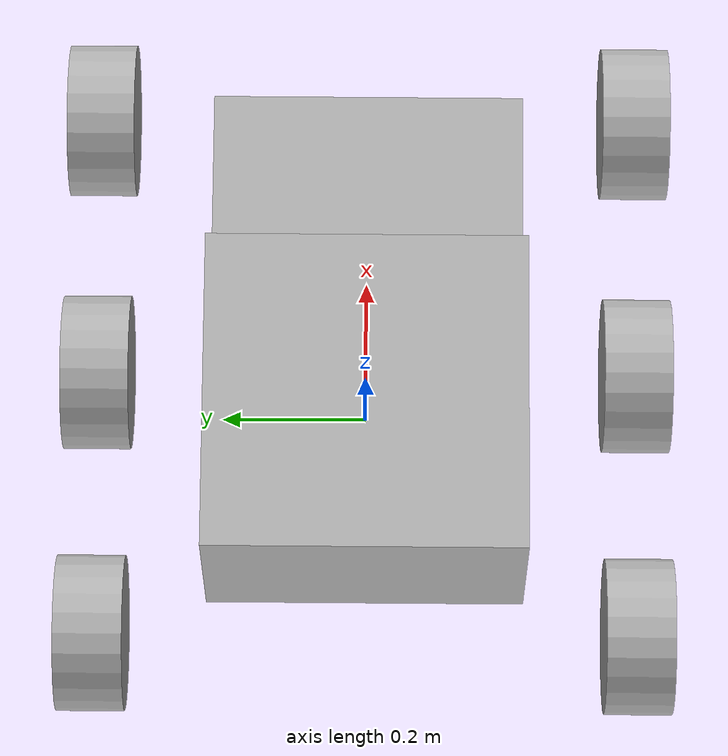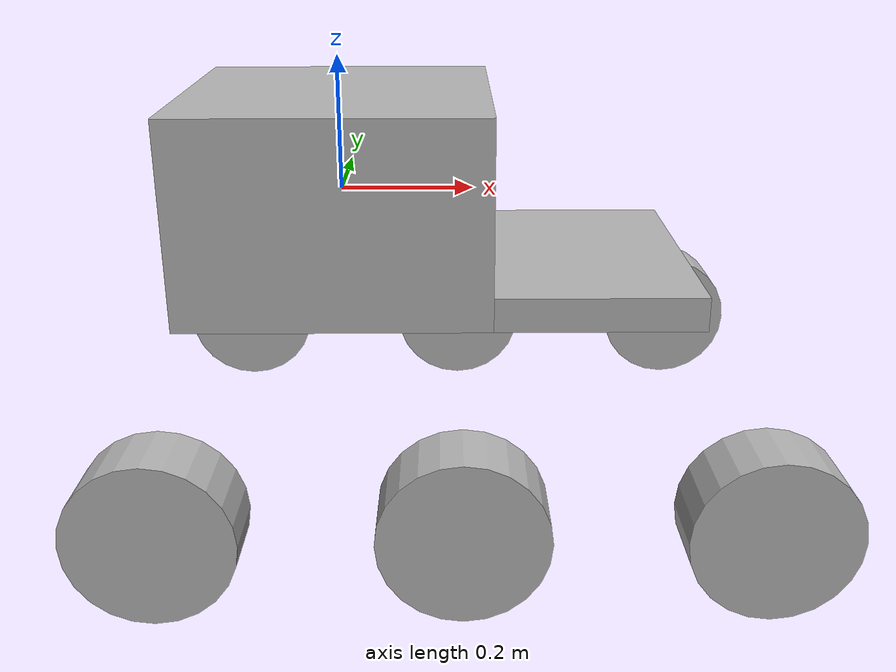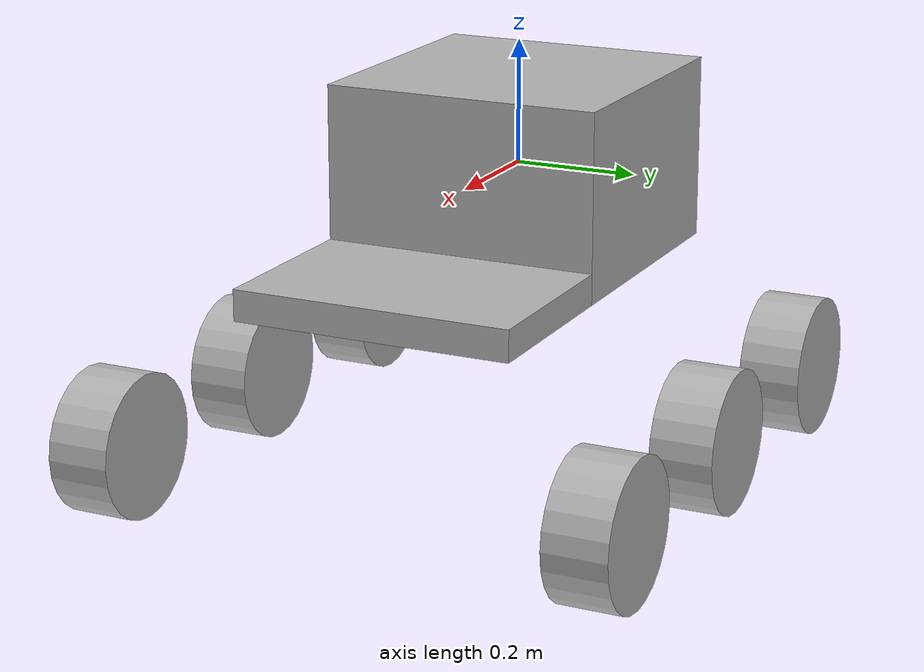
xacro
<?xml version="1.0"?>
<robot name="uirover" xmlns:xacro="http://www.ros.org/wiki/xacro">

  <!-- IMPORTS -->
  <xacro:include filename="$(find uirover_description)/xacro/macros.xacro" />
  <xacro:include filename="$(find uirover_description)/xacro/properties.xacro" />

  <!-- BASE LINK -->
  <link name="base_link" />

  <!-- CHASSIS -->
  <xacro:box name="chassis" x="${chassis_length}" y="${chassis_width}" z="${chassis_height}" mass="${5}" />
  <xacro:box_inertia_tensor mass="${chassis_mass}" len_x="${chassis_length}" len_y="${chassis_width}" len_z="${chassis_height}" />
  <joint name="chassis_joint" type="fixed">
    <parent link="base_link" />
    <child link="chassis" />
    <origin xyz="0 0 0" rpy="0 0 0" />
  </joint>

  <!-- ARM PLATFORM -->
  <xacro:box name="arm_platform" x="${arm_platform_length}" y="${arm_platform_width}" z="${arm_platform_height}" mass="${3}" />
  <joint name="arm_platform_joint" type="fixed">
    <parent link="base_link" />
    <child link="arm_platform" />
    <origin xyz="${chassis_length/2 + arm_platform_length/2} 0 ${-chassis_height/2 + arm_platform_height/2}" rpy="0 0 0" />
  </joint>

  <!-- SWIVEL JOINTS -->
  <xacro:wheel_swivel name="fl_swivel" x="${chassis_length/2.5+wheel_spacing}" y="${wheel_distance_side}" z="${-suspension_height-(chassis_height/2)}" />
  <xacro:wheel_swivel name="fr_swivel" x="${chassis_length/2.5+wheel_spacing}" y="${-wheel_distance_side}" z="${-suspension_height-(chassis_height/2)}" />
  <xacro:wheel_swivel name="bl_swivel" x="${chassis_length/2.5-wheel_spacing}" y="${wheel_distance_side}" z="${-suspension_height-(chassis_height/2)}" />
  <xacro:wheel_swivel name="br_swivel" x="${chassis_length/2.5-wheel_spacing}" y="${-wheel_distance_side}" z="${-suspension_height-(chassis_height/2)}" />

  <!-- WHEELS -->
  <xacro:wheel name="fl_wheel" x="0" y="0" z ="0" parent="fl_swivel" />
  <xacro:wheel name="fr_wheel" x="0" y="0" z ="0" parent="fr_swivel" />
  <xacro:wheel name="ml_wheel" x="${chassis_length/2.5}" y="${wheel_distance_side}" z="${-suspension_height-(chassis_height/2)}" parent="chassis" />
  <xacro:wheel name="mr_wheel" x="${chassis_length/2.5}" y="${-wheel_distance_side}" z="${-suspension_height-(chassis_height/2)}" parent="chassis"/>
  <xacro:wheel name="bl_wheel" x="0" y="0" z ="0" parent="bl_swivel" />
  <xacro:wheel name="br_wheel" x="0" y="0" z ="0" parent="br_swivel" />

  <!-- Robot Footprint -->
  <!-- This is needed for nav libraries. Its the 2D top-down profile of the robot. Makes for simpler collision detection. -->
  <link name="base_footprint" />
  <joint name="base_footprint_joint" type="fixed">
    <parent link="base_link" />
    <child link="base_footprint" />
    <origin xyz="0.0 0.0 ${-0.3-chassis_height/2}" rpy="0 0 0" />
  </joint>

</robot>

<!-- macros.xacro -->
<robot name="uiowa_rover" xmlns:xacro="http://ros.org/wiki/xacro">

  <!-- INERTIA -->
  <xacro:macro name="box_inertia_tensor" params="mass len_x len_y len_z">
    <inertial>
      <mass value="${mass}" />
      <inertia ixx="${(1/12)*mass*(len_z*len_z+len_y*len_y)}" ixy="0.0" ixz="0.0"
        iyy="${(1/12)*mass*(len_z*len_z+len_x*len_x)}" iyz="0.0"
        izz="${(1/12)*mass*(len_x*len_x+len_y*len_y)}" />
    </inertial>
  </xacro:macro>

  <xacro:macro name="cylinder_inertia_tensor" params="mass radius length">
    <inertial>
      <mass value="${mass}" />
      <inertia ixx="${(1/12)*mass*(3*radius*radius+length*length)}" ixy="0.0" ixz="0.0"
        iyy="${(1/12)*mass*(3*radius*radius+length*length)}" iyz="0.0"
        izz="${(1/2)*mass*radius*radius}" />
    </inertial>
  </xacro:macro>

  <!-- BOX -->
  <xacro:macro name="box" params="name x y z mass">
    <link name="${name}">
      <visual>
        <geometry>
          <box size="${x} ${y} ${z}" />
        </geometry>
        <material name="Grey">
          <color rgba="0.7 0.7 0.7 1.0" />
        </material>
      </visual>
      <collision>
        <geometry>
          <box size="${x} ${y} ${z}" />
        </geometry>
      </collision>
      <xacro:box_inertia_tensor mass="${mass}" len_x="${x}" len_y="${y}" len_z="${z}" />
    </link>
  </xacro:macro>

  <!-- WHEEL -->
  <xacro:macro name="wheel" params="name x y z parent">
    <link name="${name}">
      <visual>
        <geometry>
          <cylinder radius="${wheel_diameter/2}" length="${wheel_width}" />
        </geometry>
        <material name="Grey">
          <color rgba="0.7 0.7 0.7 1.0" />
        </material>
      </visual>
      <collision>
        <geometry>
          <cylinder radius="${wheel_diameter/2}" length="${wheel_width}" />
        </geometry>
      </collision>
      <xacro:cylinder_inertia_tensor mass="${wheel_mass}" radius="${wheel_diameter/2}"
        length="${wheel_width}" />
    </link>
    <joint name="${name}_joint" type="continuous">
      <parent link="${parent}" />
      <child link="${name}" />
      <origin xyz="${x} ${y} ${z}" rpy="${-pi/2} 0 0" />
      <axis xyz="0 0 1" />
    </joint>
  </xacro:macro>

  <!-- WHEEL SWIVELS -->
  <xacro:macro name="wheel_swivel" params="name x y z">
    <link name="${name}">
      <visual>
        <geometry>
          <sphere radius="0.05" />
        </geometry>
        <material name="Grey">
          <color rgba="0.7 0.7 0.7 1.0" />
        </material>
      </visual>
      <collision>
        <geometry>
          <sphere radius="0.05" />
        </geometry>
      </collision>
      <xacro:box_inertia_tensor mass="0.1" len_x="0.1" len_y="0.1" len_z="0.1" />
    </link>
    <joint name="${name}_joint" type="revolute">
      <parent link="base_link" />
      <child link="${name}" />
      <origin xyz="${x} ${y} ${z}" rpy="0 0 0" />
      <axis xyz="0 0 1" />
      <limit lower="${-pi/2}" upper="${pi/2}" effort="10" velocity="1" />
    </joint>
  </xacro:macro>
</robot>

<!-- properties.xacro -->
<robot name="uirover" xmlns:xacro="http://ros.org/wiki/xacro">
    <xacro:property name="wheel_diameter" value="0.23" />
    <xacro:property name="chassis_width" value="0.45" />
    <xacro:property name="chassis_length" value="0.45" />
    <xacro:property name="chassis_height" value="0.30" />
    <xacro:property name="chassis_mass" value="5" />

    <xacro:property name="arm_platform_width" value="${chassis_width}" />
    <xacro:property name="arm_platform_length" value="0.3" />
    <xacro:property name="arm_platform_height" value="0.05" />
    <xacro:property name="arm_platform_mass" value="3" />

    <xacro:property name="wheel_width" value="0.1" />
    <xacro:property name="wheel_diameter" value="0.228" />
    <xacro:property name="wheel_mass" value="0.5" />
    <xacro:property name="wheel_distance_side" value="0.4" />
    <xacro:property name="wheel_spacing" value="0.4" />
    <xacro:property name="suspension_height" value="0.20"/>
</robot>
